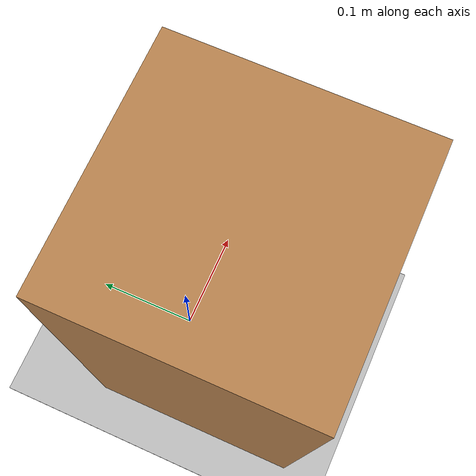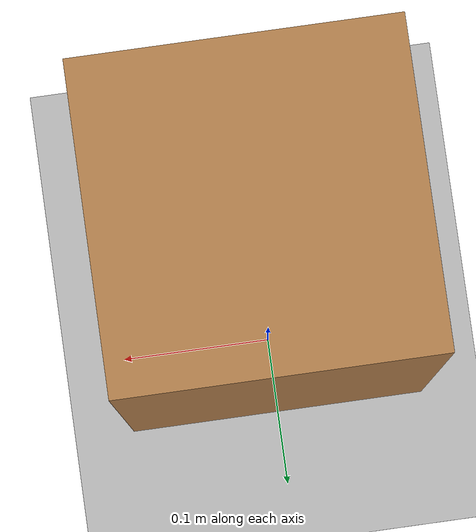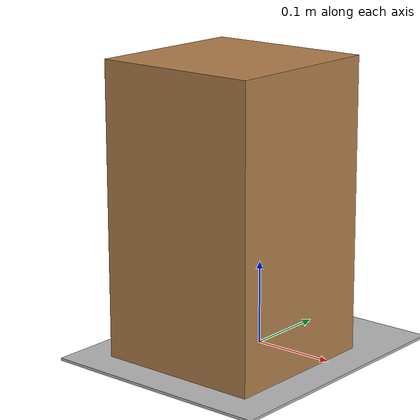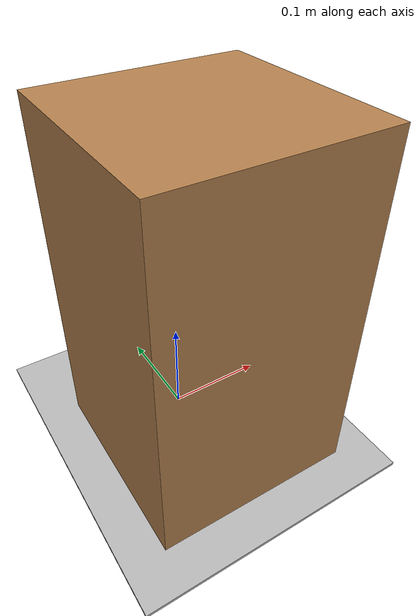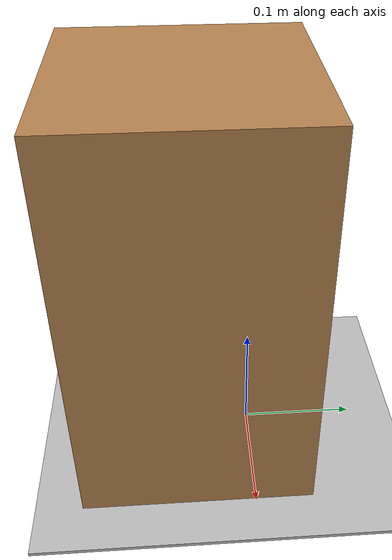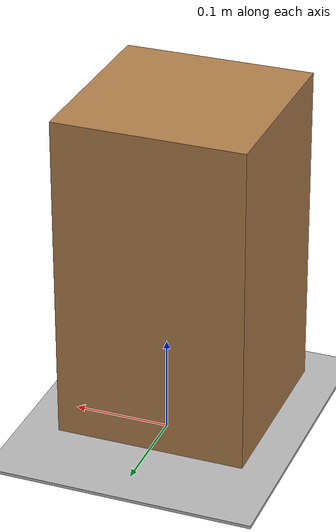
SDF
<sdf version="1.6">
 <world name="default">
  <light name="sun" type="directional">
   <pose>0 0 10 0 -0 0</pose>
   <diffuse>0.8 0.8 0.8 1</diffuse>
   <specular>0.2 0.2 0.2 1</specular>
   <attenuation>
    <range>1000</range>
    <constant>0.9</constant>
    <linear>0.01</linear>
    <quadratic>0.001</quadratic>
   </attenuation>
   <direction>-0.5 0.1 -0.9</direction>
   <spot><inner_angle>0</inner_angle><outer_angle>0</outer_angle><falloff>0</falloff></spot>
  </light>
  <model name="ground_plane">
   <static>1</static>
   <link name="link">
    <collision name="collision">
     <geometry><plane><normal>0 0 1</normal><size>100 100</size></plane></geometry>
     <surface><friction><ode><mu>100</mu><mu2>50</mu2></ode></friction></surface>
    </collision>
    <visual name="visual">
     <cast_shadows>0</cast_shadows>
     <geometry><plane><normal>0 0 1</normal><size>100 100</size></plane></geometry>
     <material>
      <script><uri>file://media/materials/scripts/gazebo.material</uri><name>Gazebo/Grey</name></script>
     </material>
    </visual>
   </link>
  </model>
  <gravity>0 0 -9.8</gravity>
  <magnetic_field>6e-06 2.3e-05 -4.2e-05</magnetic_field>
  <atmosphere type="adiabatic"/>
  <physics type="ode">
   <max_step_size>0.001</max_step_size>
   <real_time_factor>1</real_time_factor>
   <real_time_update_rate>1000</real_time_update_rate>
  </physics>
  <scene><ambient>0.4 0.4 0.4 1</ambient><background>0.7 0.7 0.7 1</background><shadows>1</shadows></scene>
  <spherical_coordinates>
   <surface_model>EARTH_WGS84</surface_model>
   <latitude_deg>0</latitude_deg>
   <longitude_deg>0</longitude_deg>
   <elevation>0</elevation>
   <heading_deg>0</heading_deg>
  </spherical_coordinates>
  <model name="project3.world">
   <link name="Wall_21">
    <collision name="Wall_21_Collision">
     <geometry><box><size>0.2 0.2 0.35</size></box></geometry>
     <pose>0 0 0.175 0 -0 0</pose>
    </collision>
    <visual name="Wall_21_Visual">
     <pose>0 0 0.175 0 -0 0</pose>
     <geometry><box><size>0.2 0.2 0.35</size></box></geometry>
     <material>
      <script><uri>file://media/materials/scripts/gazebo.material</uri><name>Gazebo/Wood</name></script>
      <ambient>1 1 1 1</ambient>
     </material>
     <meta><layer>0</layer></meta>
    </visual>
    <pose>0 -0.05 0 0 -0 -1.5708</pose>
   </link>
   <static>1</static>
  </model>
  <model name="project3_straight_road">
   <static>1</static>
   <link name="link">
    <collision name="collision">
     <geometry><plane><normal>0 0 1</normal><size>3.5 3.2</size></plane></geometry>
     <surface><friction><ode><mu>75</mu><mu2>75</mu2></ode></friction></surface>
    </collision>
    <visual name="visual">
     <cast_shadows>0</cast_shadows>
     <geometry><plane><normal>0 0 1</normal><size>3.5 3.2</size></plane></geometry>
     <material>
      <script>
       <uri>model://project3_straight_road/materials/scripts</uri>
       <uri>model://project3_straight_road/materials/textures</uri>
       <name>project3_straight_road/Image</name>
      </script>
     </material>
    </visual>
   </link>
  </model>
 </world>
</sdf>
